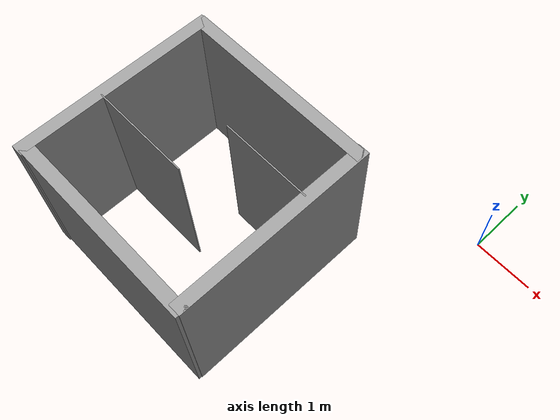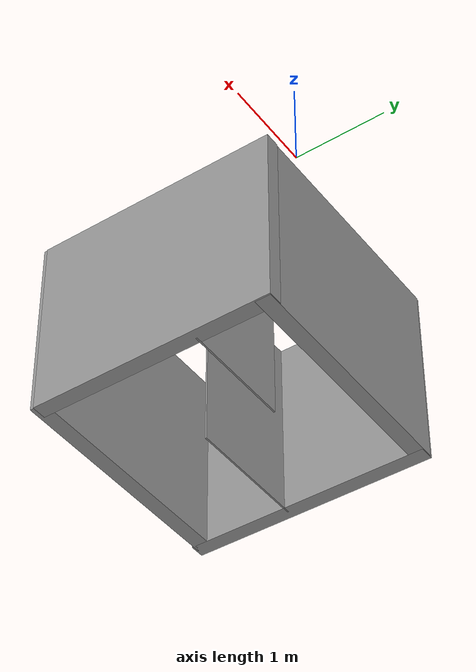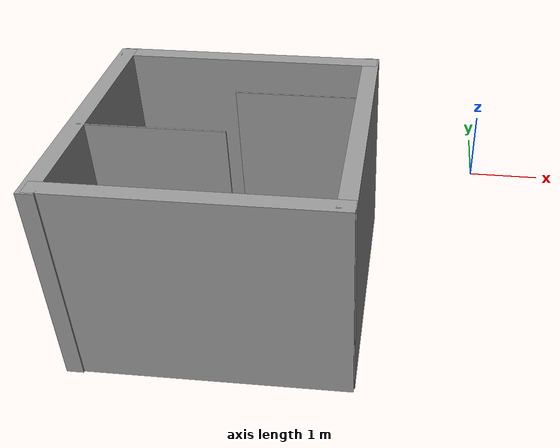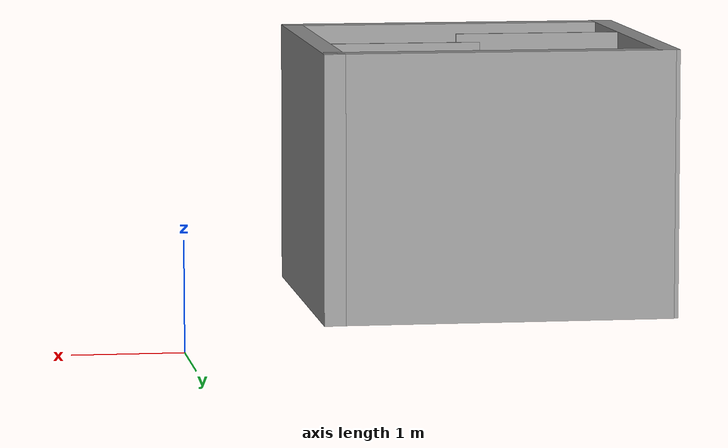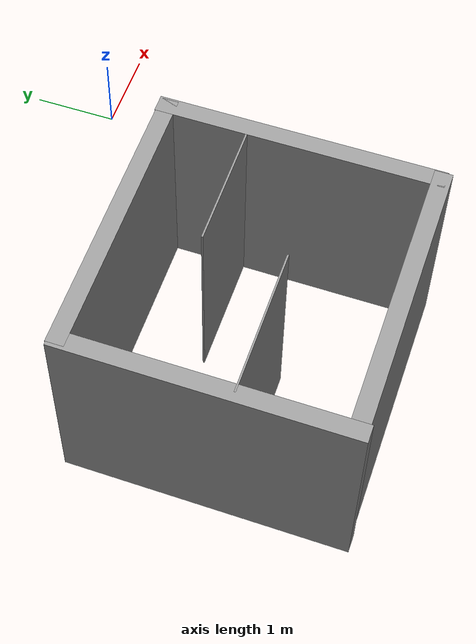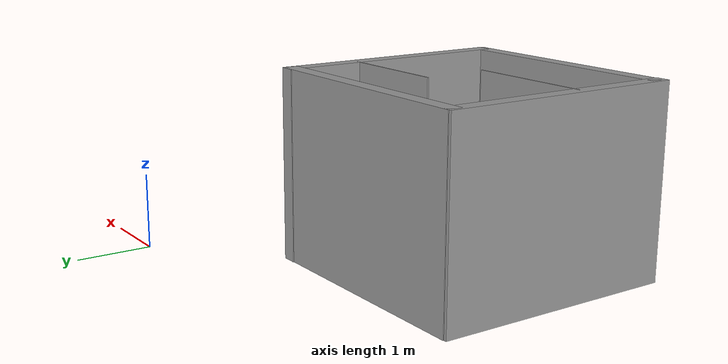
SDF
<?xml version='1.0'?>
<sdf version='1.4'>
  <model name='wtfWALL'>
    <link name='Wall_16'>
      <collision name='Wall_16_Collision'>
        <geometry>
          <box>
            <size>3.25 0.2 2.5</size>
          </box>
        </geometry>
        <pose>0 0 1.25 0 -0 0</pose>
      </collision>
      <visual name='Wall_16_Visual'>
        <pose>0 0 1.25 0 -0 0</pose>
        <geometry>
          <box>
            <size>3.25 0.2 2.5</size>
          </box>
        </geometry>
        <material>
          <script>
            <uri>file://media/materials/scripts/gazebo.material</uri>
            <name>Gazebo/Grey</name>
          </script>
        </material>
      </visual>
      <velocity_decay>
        <linear>0</linear>
        <angular>0</angular>
      </velocity_decay>
      <pose>-3.055 -1.387 0 0 -0 0</pose>
    </link>
    <link name='Wall_21'>
      <collision name='Wall_21_Collision'>
        <geometry>
          <box>
            <size>3.2 0.2 2.5</size>
          </box>
        </geometry>
        <pose>0 0 1.25 0 -0 0</pose>
      </collision>
      <visual name='Wall_21_Visual'>
        <pose>0 0 1.25 0 -0 0</pose>
        <geometry>
          <box>
            <size>3.2 0.2 2.5</size>
          </box>
        </geometry>
        <material>
          <script>
            <uri>file://media/materials/scripts/gazebo.material</uri>
            <name>Gazebo/Grey</name>
          </script>
        </material>
      </visual>
      <velocity_decay>
        <linear>0</linear>
        <angular>0</angular>
      </velocity_decay>
      <pose>-1.51038 -2.87696 0 0 0 -1.5708</pose>
    </link>
    <link name='Wall_23'>
      <collision name='Wall_23_Collision'>
        <geometry>
          <box>
            <size>3.25 0.2 2.5</size>
          </box>
        </geometry>
        <pose>0 0 1.25 0 -0 0</pose>
      </collision>
      <visual name='Wall_23_Visual'>
        <pose>0 0 1.25 0 -0 0</pose>
        <geometry>
          <box>
            <size>3.25 0.2 2.5</size>
          </box>
        </geometry>
        <material>
          <script>
            <uri>file://media/materials/scripts/gazebo.material</uri>
            <name>Gazebo/Grey</name>
          </script>
        </material>
      </visual>
      <velocity_decay>
        <linear>0</linear>
        <angular>0</angular>
      </velocity_decay>
      <pose>-3.04538 -4.42696 0 0 -0 3.14159</pose>
    </link>
    <link name='Wall_28'>
      <collision name='Wall_28_Collision'>
        <geometry>
          <box>
            <size>1.67 0.02 2.5</size>
          </box>
        </geometry>
        <pose>0 0 1.25 0 -0 0</pose>
      </collision>
      <visual name='Wall_28_Visual'>
        <pose>0 0 1.25 0 -0 0</pose>
        <geometry>
          <box>
            <size>1.67 0.02 2.5</size>
          </box>
        </geometry>
        <material>
          <script>
            <uri>file://media/materials/scripts/gazebo.material</uri>
            <name>Gazebo/Grey</name>
          </script>
        </material>
      </visual>
      <velocity_decay>
        <linear>0</linear>
        <angular>0</angular>
      </velocity_decay>
      <pose>-3.77538 -3.20695 0 0 -0 0</pose>
    </link>
    <link name='Wall_34'>
      <collision name='Wall_34_Collision'>
        <geometry>
          <box>
            <size>1.49 0.02 2.5</size>
          </box>
        </geometry>
        <pose>0 0 1.25 0 -0 0</pose>
      </collision>
      <visual name='Wall_34_Visual'>
        <pose>0 0 1.25 0 -0 0</pose>
        <geometry>
          <box>
            <size>1.49 0.02 2.5</size>
          </box>
        </geometry>
        <material>
          <script>
            <uri>file://media/materials/scripts/gazebo.material</uri>
            <name>Gazebo/Grey</name>
          </script>
        </material>
      </visual>
      <velocity_decay>
        <linear>0</linear>
        <angular>0</angular>
      </velocity_decay>
      <pose>-2.275 -2.317 0 0 -0 3.14159</pose>
    </link>
    <link name='Wall_5'>
      <collision name='Wall_5_Collision'>
        <geometry>
          <box>
            <size>3.25 0.2 2.5</size>
          </box>
        </geometry>
        <pose>0 0 1.25 0 -0 0</pose>
      </collision>
      <visual name='Wall_5_Visual'>
        <pose>0 0 1.25 0 -0 0</pose>
        <geometry>
          <box>
            <size>3.25 0.2 2.5</size>
          </box>
        </geometry>
        <material>
          <script>
            <uri>file://media/materials/scripts/gazebo.material</uri>
            <name>Gazebo/Grey</name>
          </script>
        </material>
      </visual>
      <velocity_decay>
        <linear>0</linear>
        <angular>0</angular>
      </velocity_decay>
      <pose>-4.62 -2.922 0 0 -0 1.5708</pose>
    </link>
    <static>1</static>
  </model>
</sdf>
